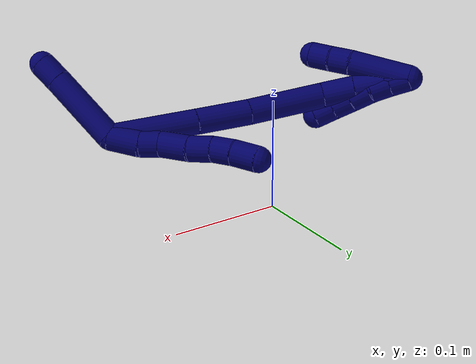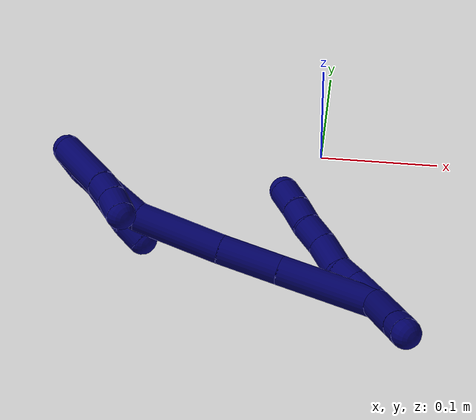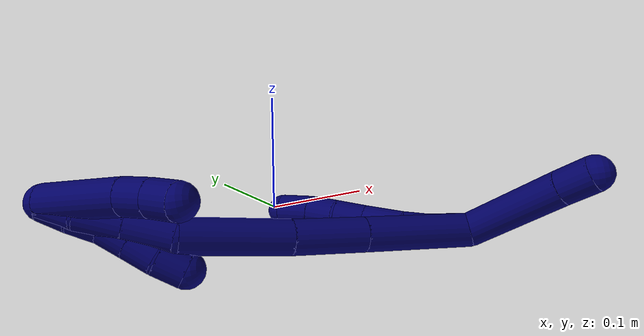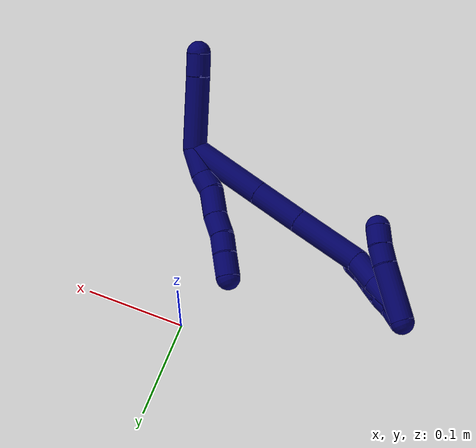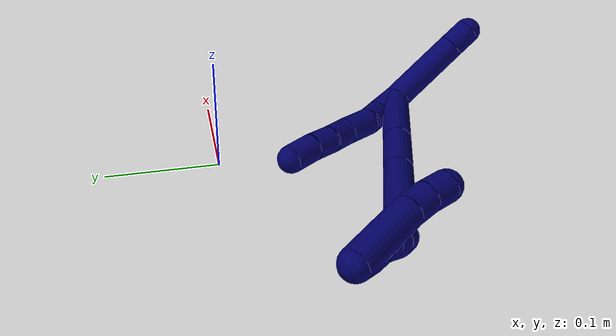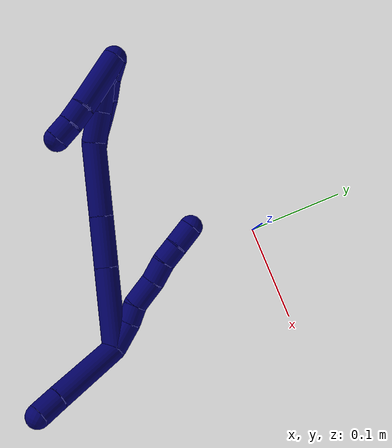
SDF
<sdf version="1.7">
 <world name="default">
  <model name="7">
   <static>0</static>
   <link name="7">
    <collision name="collision-cylinder-e_1_2_8">
     <pose>0.000572 0.001658 -0.015069 -3.03204 0.037737 -0.662909</pose>
     <geometry><cylinder><radius>0.0125</radius><length>0.030342</length></cylinder></geometry>
     <surface>
      <friction><ode><mu>1.16</mu><mu2>1.16</mu2><slip1>0</slip1><slip2>0</slip2></ode></friction>
      <contact><ode><kp>1e+06</kp><kd>1</kd><max_vel>0</max_vel><min_depth>0.001</min_depth></ode></contact>
     </surface>
    </collision>
    <visual name="visual-cylinder-e_1_2_8">
     <pose>0.000572 0.001658 -0.015069 -3.03204 0.037737 -0.662909</pose>
     <geometry><cylinder><radius>0.0125</radius><length>0.030342</length></cylinder></geometry>
     <material><ambient>0.003922 0 0.403922 1</ambient></material>
    </visual>
    <collision name="collision-cylinder-e_2_8_9">
     <pose>-0.00035 0.00568 -0.039782 -2.90109 -0.149435 1.10926</pose>
     <geometry><cylinder><radius>0.0125</radius><length>0.020082</length></cylinder></geometry>
     <surface>
      <friction><ode><mu>1.16</mu><mu2>1.16</mu2><slip1>0</slip1><slip2>0</slip2></ode></friction>
      <contact><ode><kp>1e+06</kp><kd>1</kd><max_vel>0</max_vel><min_depth>0.001</min_depth></ode></contact>
     </surface>
    </collision>
    <visual name="visual-cylinder-e_2_8_9">
     <pose>-0.00035 0.00568 -0.039782 -2.90109 -0.149435 1.10926</pose>
     <geometry><cylinder><radius>0.0125</radius><length>0.020082</length></cylinder></geometry>
     <material><ambient>0.003922 0 0.403922 1</ambient></material>
    </visual>
    <collision name="collision-cylinder-e_3_9_10">
     <pose>0.000418 0.012208 -0.063768 -2.85911 0.15042 -0.974632</pose>
     <geometry><cylinder><radius>0.0125</radius><length>0.03021</length></cylinder></geometry>
     <surface>
      <friction><ode><mu>1.16</mu><mu2>1.16</mu2><slip1>0</slip1><slip2>0</slip2></ode></friction>
      <contact><ode><kp>1e+06</kp><kd>1</kd><max_vel>0</max_vel><min_depth>0.001</min_depth></ode></contact>
     </surface>
    </collision>
    <visual name="visual-cylinder-e_3_9_10">
     <pose>0.000418 0.012208 -0.063768 -2.85911 0.15042 -0.974632</pose>
     <geometry><cylinder><radius>0.0125</radius><length>0.03021</length></cylinder></geometry>
     <material><ambient>0.003922 0 0.403922 1</ambient></material>
    </visual>
    <collision name="collision-cylinder-e_4_10_11">
     <pose>0.002609 0.020003 -0.089307 -2.8279 -0.006161 0.038952</pose>
     <geometry><cylinder><radius>0.0125</radius><length>0.023543</length></cylinder></geometry>
     <surface>
      <friction><ode><mu>1.16</mu><mu2>1.16</mu2><slip1>0</slip1><slip2>0</slip2></ode></friction>
      <contact><ode><kp>1e+06</kp><kd>1</kd><max_vel>0</max_vel><min_depth>0.001</min_depth></ode></contact>
     </surface>
    </collision>
    <visual name="visual-cylinder-e_4_10_11">
     <pose>0.002609 0.020003 -0.089307 -2.8279 -0.006161 0.038952</pose>
     <geometry><cylinder><radius>0.0125</radius><length>0.023543</length></cylinder></geometry>
     <material><ambient>0.003922 0 0.403922 1</ambient></material>
    </visual>
    <collision name="collision-cylinder-e_5_11_12">
     <pose>0.004317 0.026538 -0.110455 -2.85782 0.170114 -1.07626</pose>
     <geometry><cylinder><radius>0.0125</radius><length>0.021035</length></cylinder></geometry>
     <surface>
      <friction><ode><mu>1.16</mu><mu2>1.16</mu2><slip1>0</slip1><slip2>0</slip2></ode></friction>
      <contact><ode><kp>1e+06</kp><kd>1</kd><max_vel>0</max_vel><min_depth>0.001</min_depth></ode></contact>
     </surface>
    </collision>
    <visual name="visual-cylinder-e_5_11_12">
     <pose>0.004317 0.026538 -0.110455 -2.85782 0.170114 -1.07626</pose>
     <geometry><cylinder><radius>0.0125</radius><length>0.021035</length></cylinder></geometry>
     <material><ambient>0.003922 0 0.403922 1</ambient></material>
    </visual>
    <collision name="collision-cylinder-e_6_12_6">
     <pose>0.008342 0.031566 -0.132408 -2.96625 0.182078 -1.60867</pose>
     <geometry><cylinder><radius>0.0125</radius><length>0.024788</length></cylinder></geometry>
     <surface>
      <friction><ode><mu>1.16</mu><mu2>1.16</mu2><slip1>0</slip1><slip2>0</slip2></ode></friction>
      <contact><ode><kp>1e+06</kp><kd>1</kd><max_vel>0</max_vel><min_depth>0.001</min_depth></ode></contact>
     </surface>
    </collision>
    <visual name="visual-cylinder-e_6_12_6">
     <pose>0.008342 0.031566 -0.132408 -2.96625 0.182078 -1.60867</pose>
     <geometry><cylinder><radius>0.0125</radius><length>0.024788</length></cylinder></geometry>
     <material><ambient>0.003922 0 0.403922 1</ambient></material>
    </visual>
    <collision name="collision-cylinder-e_1_2_13">
     <pose>-0.016112 0.011233 0.032691 -0.330964 -0.436176 0.073989</pose>
     <geometry><cylinder><radius>0.0125</radius><length>0.076275</length></cylinder></geometry>
     <surface>
      <friction><ode><mu>1.16</mu><mu2>1.16</mu2><slip1>0</slip1><slip2>0</slip2></ode></friction>
      <contact><ode><kp>1e+06</kp><kd>1</kd><max_vel>0</max_vel><min_depth>0.001</min_depth></ode></contact>
     </surface>
    </collision>
    <visual name="visual-cylinder-e_1_2_13">
     <pose>-0.016112 0.011233 0.032691 -0.330964 -0.436176 0.073989</pose>
     <geometry><cylinder><radius>0.0125</radius><length>0.076275</length></cylinder></geometry>
     <material><ambient>0.003922 0 0.403922 1</ambient></material>
    </visual>
    <collision name="collision-cylinder-e_2_13_5">
     <pose>-0.037077 0.025683 0.075717 -0.301843 -0.421463 0.065038</pose>
     <geometry><cylinder><radius>0.0125</radius><length>0.023725</length></cylinder></geometry>
     <surface>
      <friction><ode><mu>1.16</mu><mu2>1.16</mu2><slip1>0</slip1><slip2>0</slip2></ode></friction>
      <contact><ode><kp>1e+06</kp><kd>1</kd><max_vel>0</max_vel><min_depth>0.001</min_depth></ode></contact>
     </surface>
    </collision>
    <visual name="visual-cylinder-e_2_13_5">
     <pose>-0.037077 0.025683 0.075717 -0.301843 -0.421463 0.065038</pose>
     <geometry><cylinder><radius>0.0125</radius><length>0.023725</length></cylinder></geometry>
     <material><ambient>0.003922 0 0.403922 1</ambient></material>
    </visual>
    <collision name="collision-cylinder-e_1_2_14">
     <pose>-0.023316 0.004595 -0.035119 -3.01149 -0.582201 2.7134</pose>
     <geometry><cylinder><radius>0.0125</radius><length>0.084807</length></cylinder></geometry>
     <surface>
      <friction><ode><mu>1.16</mu><mu2>1.16</mu2><slip1>0</slip1><slip2>0</slip2></ode></friction>
      <contact><ode><kp>1e+06</kp><kd>1</kd><max_vel>0</max_vel><min_depth>0.001</min_depth></ode></contact>
     </surface>
    </collision>
    <visual name="visual-cylinder-e_1_2_14">
     <pose>-0.023316 0.004595 -0.035119 -3.01149 -0.582201 2.7134</pose>
     <geometry><cylinder><radius>0.0125</radius><length>0.084807</length></cylinder></geometry>
     <material><ambient>0.003922 0 0.403922 1</ambient></material>
    </visual>
    <collision name="collision-cylinder-e_2_14_15">
     <pose>-0.061142 0.012163 -0.092048 -3.00613 -0.582781 2.69674</pose>
     <geometry><cylinder><radius>0.0125</radius><length>0.052729</length></cylinder></geometry>
     <surface>
      <friction><ode><mu>1.16</mu><mu2>1.16</mu2><slip1>0</slip1><slip2>0</slip2></ode></friction>
      <contact><ode><kp>1e+06</kp><kd>1</kd><max_vel>0</max_vel><min_depth>0.001</min_depth></ode></contact>
     </surface>
    </collision>
    <visual name="visual-cylinder-e_2_14_15">
     <pose>-0.061142 0.012163 -0.092048 -3.00613 -0.582781 2.69674</pose>
     <geometry><cylinder><radius>0.0125</radius><length>0.052729</length></cylinder></geometry>
     <material><ambient>0.003922 0 0.403922 1</ambient></material>
    </visual>
    <collision name="collision-cylinder-e_3_15_16">
     <pose>-0.096572 0.021153 -0.14479 -2.94945 -0.586088 2.52331</pose>
     <geometry><cylinder><radius>0.0125</radius><length>0.075646</length></cylinder></geometry>
     <surface>
      <friction><ode><mu>1.16</mu><mu2>1.16</mu2><slip1>0</slip1><slip2>0</slip2></ode></friction>
      <contact><ode><kp>1e+06</kp><kd>1</kd><max_vel>0</max_vel><min_depth>0.001</min_depth></ode></contact>
     </surface>
    </collision>
    <visual name="visual-cylinder-e_3_15_16">
     <pose>-0.096572 0.021153 -0.14479 -2.94945 -0.586088 2.52331</pose>
     <geometry><cylinder><radius>0.0125</radius><length>0.075646</length></cylinder></geometry>
     <material><ambient>0.003922 0 0.403922 1</ambient></material>
    </visual>
    <collision name="collision-cylinder-e_4_16_17">
     <pose>-0.122351 0.033065 -0.190035 -2.75093 -0.304166 1.31818</pose>
     <geometry><cylinder><radius>0.0125</radius><length>0.03245</length></cylinder></geometry>
     <surface>
      <friction><ode><mu>1.16</mu><mu2>1.16</mu2><slip1>0</slip1><slip2>0</slip2></ode></friction>
      <contact><ode><kp>1e+06</kp><kd>1</kd><max_vel>0</max_vel><min_depth>0.001</min_depth></ode></contact>
     </surface>
    </collision>
    <visual name="visual-cylinder-e_4_16_17">
     <pose>-0.122351 0.033065 -0.190035 -2.75093 -0.304166 1.31818</pose>
     <geometry><cylinder><radius>0.0125</radius><length>0.03245</length></cylinder></geometry>
     <material><ambient>0.003922 0 0.403922 1</ambient></material>
    </visual>
    <collision name="collision-cylinder-e_5_17_18">
     <pose>-0.131722 0.044612 -0.217765 -2.74286 -0.300487 1.28603</pose>
     <geometry><cylinder><radius>0.0125</radius><length>0.030483</length></cylinder></geometry>
     <surface>
      <friction><ode><mu>1.16</mu><mu2>1.16</mu2><slip1>0</slip1><slip2>0</slip2></ode></friction>
      <contact><ode><kp>1e+06</kp><kd>1</kd><max_vel>0</max_vel><min_depth>0.001</min_depth></ode></contact>
     </surface>
    </collision>
    <visual name="visual-cylinder-e_5_17_18">
     <pose>-0.131722 0.044612 -0.217765 -2.74286 -0.300487 1.28603</pose>
     <geometry><cylinder><radius>0.0125</radius><length>0.030483</length></cylinder></geometry>
     <material><ambient>0.003922 0 0.403922 1</ambient></material>
    </visual>
    <collision name="collision-cylinder-e_6_18_1">
     <pose>-0.13747 0.055183 -0.241994 -2.71469 -0.103769 0.470303</pose>
     <geometry><cylinder><radius>0.0125</radius><length>0.023885</length></cylinder></geometry>
     <surface>
      <friction><ode><mu>1.16</mu><mu2>1.16</mu2><slip1>0</slip1><slip2>0</slip2></ode></friction>
      <contact><ode><kp>1e+06</kp><kd>1</kd><max_vel>0</max_vel><min_depth>0.001</min_depth></ode></contact>
     </surface>
    </collision>
    <visual name="visual-cylinder-e_6_18_1">
     <pose>-0.13747 0.055183 -0.241994 -2.71469 -0.103769 0.470303</pose>
     <geometry><cylinder><radius>0.0125</radius><length>0.023885</length></cylinder></geometry>
     <material><ambient>0.003922 0 0.403922 1</ambient></material>
    </visual>
    <collision name="collision-cylinder-e_1_1_19">
     <pose>-0.13681 0.055017 -0.244406 0.5443 0.190923 0.053431</pose>
     <geometry><cylinder><radius>0.0125</radius><length>0.02</length></cylinder></geometry>
     <surface>
      <friction><ode><mu>1.16</mu><mu2>1.16</mu2><slip1>0</slip1><slip2>0</slip2></ode></friction>
      <contact><ode><kp>1e+06</kp><kd>1</kd><max_vel>0</max_vel><min_depth>0.001</min_depth></ode></contact>
     </surface>
    </collision>
    <visual name="visual-cylinder-e_1_1_19">
     <pose>-0.13681 0.055017 -0.244406 0.5443 0.190923 0.053431</pose>
     <geometry><cylinder><radius>0.0125</radius><length>0.02</length></cylinder></geometry>
     <material><ambient>0.003922 0 0.403922 1</ambient></material>
    </visual>
    <collision name="collision-cylinder-e_2_19_20">
     <pose>-0.131579 0.045315 -0.227787 0.511849 0.339753 0.089706</pose>
     <geometry><cylinder><radius>0.0125</radius><length>0.02</length></cylinder></geometry>
     <surface>
      <friction><ode><mu>1.16</mu><mu2>1.16</mu2><slip1>0</slip1><slip2>0</slip2></ode></friction>
      <contact><ode><kp>1e+06</kp><kd>1</kd><max_vel>0</max_vel><min_depth>0.001</min_depth></ode></contact>
     </surface>
    </collision>
    <visual name="visual-cylinder-e_2_19_20">
     <pose>-0.131579 0.045315 -0.227787 0.511849 0.339753 0.089706</pose>
     <geometry><cylinder><radius>0.0125</radius><length>0.02</length></cylinder></geometry>
     <material><ambient>0.003922 0 0.403922 1</ambient></material>
    </visual>
    <collision name="collision-cylinder-e_3_20_21">
     <pose>-0.125981 0.03452 -0.212036 0.68698 0.228543 0.082054</pose>
     <geometry><cylinder><radius>0.0125</radius><length>0.02</length></cylinder></geometry>
     <surface>
      <friction><ode><mu>1.16</mu><mu2>1.16</mu2><slip1>0</slip1><slip2>0</slip2></ode></friction>
      <contact><ode><kp>1e+06</kp><kd>1</kd><max_vel>0</max_vel><min_depth>0.001</min_depth></ode></contact>
     </surface>
    </collision>
    <visual name="visual-cylinder-e_3_20_21">
     <pose>-0.125981 0.03452 -0.212036 0.68698 0.228543 0.082054</pose>
     <geometry><cylinder><radius>0.0125</radius><length>0.02</length></cylinder></geometry>
     <material><ambient>0.003922 0 0.403922 1</ambient></material>
    </visual>
    <collision name="collision-cylinder-e_4_21_22">
     <pose>-0.121695 0.022151 -0.196917 0.684391 0.203426 0.072681</pose>
     <geometry><cylinder><radius>0.0125</radius><length>0.02</length></cylinder></geometry>
     <surface>
      <friction><ode><mu>1.16</mu><mu2>1.16</mu2><slip1>0</slip1><slip2>0</slip2></ode></friction>
      <contact><ode><kp>1e+06</kp><kd>1</kd><max_vel>0</max_vel><min_depth>0.001</min_depth></ode></contact>
     </surface>
    </collision>
    <visual name="visual-cylinder-e_4_21_22">
     <pose>-0.121695 0.022151 -0.196917 0.684391 0.203426 0.072681</pose>
     <geometry><cylinder><radius>0.0125</radius><length>0.02</length></cylinder></geometry>
     <material><ambient>0.003922 0 0.403922 1</ambient></material>
    </visual>
    <collision name="collision-cylinder-e_5_22_4">
     <pose>-0.116247 0.010444 -0.181724 0.627474 0.349905 0.114575</pose>
     <geometry><cylinder><radius>0.0125</radius><length>0.02</length></cylinder></geometry>
     <surface>
      <friction><ode><mu>1.16</mu><mu2>1.16</mu2><slip1>0</slip1><slip2>0</slip2></ode></friction>
      <contact><ode><kp>1e+06</kp><kd>1</kd><max_vel>0</max_vel><min_depth>0.001</min_depth></ode></contact>
     </surface>
    </collision>
    <visual name="visual-cylinder-e_5_22_4">
     <pose>-0.116247 0.010444 -0.181724 0.627474 0.349905 0.114575</pose>
     <geometry><cylinder><radius>0.0125</radius><length>0.02</length></cylinder></geometry>
     <material><ambient>0.003922 0 0.403922 1</ambient></material>
    </visual>
    <collision name="collision-cylinder-e_1_1_23">
     <pose>-0.140912 0.057877 -0.223161 0.074867 -0.074038 -0.002774</pose>
     <geometry><cylinder><radius>0.0125</radius><length>0.05962</length></cylinder></geometry>
     <surface>
      <friction><ode><mu>1.16</mu><mu2>1.16</mu2><slip1>0</slip1><slip2>0</slip2></ode></friction>
      <contact><ode><kp>1e+06</kp><kd>1</kd><max_vel>0</max_vel><min_depth>0.001</min_depth></ode></contact>
     </surface>
    </collision>
    <visual name="visual-cylinder-e_1_1_23">
     <pose>-0.140912 0.057877 -0.223161 0.074867 -0.074038 -0.002774</pose>
     <geometry><cylinder><radius>0.0125</radius><length>0.05962</length></cylinder></geometry>
     <material><ambient>0.003922 0 0.403922 1</ambient></material>
    </visual>
    <collision name="collision-cylinder-e_2_23_24">
     <pose>-0.144265 0.053888 -0.183689 0.177819 -0.114424 -0.010211</pose>
     <geometry><cylinder><radius>0.0125</radius><length>0.020099</length></cylinder></geometry>
     <surface>
      <friction><ode><mu>1.16</mu><mu2>1.16</mu2><slip1>0</slip1><slip2>0</slip2></ode></friction>
      <contact><ode><kp>1e+06</kp><kd>1</kd><max_vel>0</max_vel><min_depth>0.001</min_depth></ode></contact>
     </surface>
    </collision>
    <visual name="visual-cylinder-e_2_23_24">
     <pose>-0.144265 0.053888 -0.183689 0.177819 -0.114424 -0.010211</pose>
     <geometry><cylinder><radius>0.0125</radius><length>0.020099</length></cylinder></geometry>
     <material><ambient>0.003922 0 0.403922 1</ambient></material>
    </visual>
    <collision name="collision-cylinder-e_3_24_3">
     <pose>-0.147579 0.049827 -0.164226 0.233792 -0.215354 -0.025386</pose>
     <geometry><cylinder><radius>0.0125</radius><length>0.02028</length></cylinder></geometry>
     <surface>
      <friction><ode><mu>1.16</mu><mu2>1.16</mu2><slip1>0</slip1><slip2>0</slip2></ode></friction>
      <contact><ode><kp>1e+06</kp><kd>1</kd><max_vel>0</max_vel><min_depth>0.001</min_depth></ode></contact>
     </surface>
    </collision>
    <visual name="visual-cylinder-e_3_24_3">
     <pose>-0.147579 0.049827 -0.164226 0.233792 -0.215354 -0.025386</pose>
     <geometry><cylinder><radius>0.0125</radius><length>0.02028</length></cylinder></geometry>
     <material><ambient>0.003922 0 0.403922 1</ambient></material>
    </visual>
    <collision name="collision-sphere-3">
     <pose>-0.149746 0.047532 -0.154589 0 -0 0</pose>
     <geometry><sphere><radius>0.0125</radius></sphere></geometry>
     <surface>
      <friction><ode><mu>1.16</mu><mu2>1.16</mu2><slip1>0</slip1><slip2>0</slip2></ode></friction>
      <contact><ode><kp>1e+06</kp><kd>1</kd><max_vel>0</max_vel><min_depth>0.001</min_depth></ode></contact>
     </surface>
    </collision>
    <visual name="visual-sphere-3">
     <pose>-0.149746 0.047532 -0.154589 0 -0 0</pose>
     <geometry><sphere><radius>0.0125</radius></sphere></geometry>
     <material><ambient>0.003922 0 0.403922 1</ambient></material>
    </visual>
    <collision name="collision-sphere-24">
     <pose>-0.145412 0.052122 -0.173862 0 -0 0</pose>
     <geometry><sphere><radius>0.0125</radius></sphere></geometry>
     <surface>
      <friction><ode><mu>1.16</mu><mu2>1.16</mu2><slip1>0</slip1><slip2>0</slip2></ode></friction>
      <contact><ode><kp>1e+06</kp><kd>1</kd><max_vel>0</max_vel><min_depth>0.001</min_depth></ode></contact>
     </surface>
    </collision>
    <visual name="visual-sphere-24">
     <pose>-0.145412 0.052122 -0.173862 0 -0 0</pose>
     <geometry><sphere><radius>0.0125</radius></sphere></geometry>
     <material><ambient>0.003922 0 0.403922 1</ambient></material>
    </visual>
    <collision name="collision-sphere-23">
     <pose>-0.143117 0.055654 -0.193515 0 -0 0</pose>
     <geometry><sphere><radius>0.0125</radius></sphere></geometry>
     <surface>
      <friction><ode><mu>1.16</mu><mu2>1.16</mu2><slip1>0</slip1><slip2>0</slip2></ode></friction>
      <contact><ode><kp>1e+06</kp><kd>1</kd><max_vel>0</max_vel><min_depth>0.001</min_depth></ode></contact>
     </surface>
    </collision>
    <visual name="visual-sphere-23">
     <pose>-0.143117 0.055654 -0.193515 0 -0 0</pose>
     <geometry><sphere><radius>0.0125</radius></sphere></geometry>
     <material><ambient>0.003922 0 0.403922 1</ambient></material>
    </visual>
    <collision name="collision-sphere-4">
     <pose>-0.112819 0.004929 -0.17412 0 -0 0</pose>
     <geometry><sphere><radius>0.0125</radius></sphere></geometry>
     <surface>
      <friction><ode><mu>1.16</mu><mu2>1.16</mu2><slip1>0</slip1><slip2>0</slip2></ode></friction>
      <contact><ode><kp>1e+06</kp><kd>1</kd><max_vel>0</max_vel><min_depth>0.001</min_depth></ode></contact>
     </surface>
    </collision>
    <visual name="visual-sphere-4">
     <pose>-0.112819 0.004929 -0.17412 0 -0 0</pose>
     <geometry><sphere><radius>0.0125</radius></sphere></geometry>
     <material><ambient>0.003922 0 0.403922 1</ambient></material>
    </visual>
    <collision name="collision-sphere-22">
     <pose>-0.119675 0.015959 -0.189329 0 -0 0</pose>
     <geometry><sphere><radius>0.0125</radius></sphere></geometry>
     <surface>
      <friction><ode><mu>1.16</mu><mu2>1.16</mu2><slip1>0</slip1><slip2>0</slip2></ode></friction>
      <contact><ode><kp>1e+06</kp><kd>1</kd><max_vel>0</max_vel><min_depth>0.001</min_depth></ode></contact>
     </surface>
    </collision>
    <visual name="visual-sphere-22">
     <pose>-0.119675 0.015959 -0.189329 0 -0 0</pose>
     <geometry><sphere><radius>0.0125</radius></sphere></geometry>
     <material><ambient>0.003922 0 0.403922 1</ambient></material>
    </visual>
    <collision name="collision-sphere-21">
     <pose>-0.123716 0.028343 -0.204506 0 -0 0</pose>
     <geometry><sphere><radius>0.0125</radius></sphere></geometry>
     <surface>
      <friction><ode><mu>1.16</mu><mu2>1.16</mu2><slip1>0</slip1><slip2>0</slip2></ode></friction>
      <contact><ode><kp>1e+06</kp><kd>1</kd><max_vel>0</max_vel><min_depth>0.001</min_depth></ode></contact>
     </surface>
    </collision>
    <visual name="visual-sphere-21">
     <pose>-0.123716 0.028343 -0.204506 0 -0 0</pose>
     <geometry><sphere><radius>0.0125</radius></sphere></geometry>
     <material><ambient>0.003922 0 0.403922 1</ambient></material>
    </visual>
    <collision name="collision-sphere-20">
     <pose>-0.128247 0.040697 -0.219567 0 -0 0</pose>
     <geometry><sphere><radius>0.0125</radius></sphere></geometry>
     <surface>
      <friction><ode><mu>1.16</mu><mu2>1.16</mu2><slip1>0</slip1><slip2>0</slip2></ode></friction>
      <contact><ode><kp>1e+06</kp><kd>1</kd><max_vel>0</max_vel><min_depth>0.001</min_depth></ode></contact>
     </surface>
    </collision>
    <visual name="visual-sphere-20">
     <pose>-0.128247 0.040697 -0.219567 0 -0 0</pose>
     <geometry><sphere><radius>0.0125</radius></sphere></geometry>
     <material><ambient>0.003922 0 0.403922 1</ambient></material>
    </visual>
    <collision name="collision-sphere-12">
     <pose>0.006098 0.02944 -0.120406 0 -0 0</pose>
     <geometry><sphere><radius>0.0125</radius></sphere></geometry>
     <surface>
      <friction><ode><mu>1.16</mu><mu2>1.16</mu2><slip1>0</slip1><slip2>0</slip2></ode></friction>
      <contact><ode><kp>1e+06</kp><kd>1</kd><max_vel>0</max_vel><min_depth>0.001</min_depth></ode></contact>
     </surface>
    </collision>
    <visual name="visual-sphere-12">
     <pose>0.006098 0.02944 -0.120406 0 -0 0</pose>
     <geometry><sphere><radius>0.0125</radius></sphere></geometry>
     <material><ambient>0.003922 0 0.403922 1</ambient></material>
    </visual>
    <collision name="collision-sphere-11">
     <pose>0.002537 0.023636 -0.100504 0 -0 0</pose>
     <geometry><sphere><radius>0.0125</radius></sphere></geometry>
     <surface>
      <friction><ode><mu>1.16</mu><mu2>1.16</mu2><slip1>0</slip1><slip2>0</slip2></ode></friction>
      <contact><ode><kp>1e+06</kp><kd>1</kd><max_vel>0</max_vel><min_depth>0.001</min_depth></ode></contact>
     </surface>
    </collision>
    <visual name="visual-sphere-11">
     <pose>0.002537 0.023636 -0.100504 0 -0 0</pose>
     <geometry><sphere><radius>0.0125</radius></sphere></geometry>
     <material><ambient>0.003922 0 0.403922 1</ambient></material>
    </visual>
    <collision name="collision-sphere-10">
     <pose>0.002682 0.016371 -0.07811 0 -0 0</pose>
     <geometry><sphere><radius>0.0125</radius></sphere></geometry>
     <surface>
      <friction><ode><mu>1.16</mu><mu2>1.16</mu2><slip1>0</slip1><slip2>0</slip2></ode></friction>
      <contact><ode><kp>1e+06</kp><kd>1</kd><max_vel>0</max_vel><min_depth>0.001</min_depth></ode></contact>
     </surface>
    </collision>
    <visual name="visual-sphere-10">
     <pose>0.002682 0.016371 -0.07811 0 -0 0</pose>
     <geometry><sphere><radius>0.0125</radius></sphere></geometry>
     <material><ambient>0.003922 0 0.403922 1</ambient></material>
    </visual>
    <collision name="collision-sphere-9">
     <pose>-0.001845 0.008045 -0.049425 0 -0 0</pose>
     <geometry><sphere><radius>0.0125</radius></sphere></geometry>
     <surface>
      <friction><ode><mu>1.16</mu><mu2>1.16</mu2><slip1>0</slip1><slip2>0</slip2></ode></friction>
      <contact><ode><kp>1e+06</kp><kd>1</kd><max_vel>0</max_vel><min_depth>0.001</min_depth></ode></contact>
     </surface>
    </collision>
    <visual name="visual-sphere-9">
     <pose>-0.001845 0.008045 -0.049425 0 -0 0</pose>
     <geometry><sphere><radius>0.0125</radius></sphere></geometry>
     <material><ambient>0.003922 0 0.403922 1</ambient></material>
    </visual>
    <collision name="collision-sphere-2">
     <geometry><sphere><radius>0.0125</radius></sphere></geometry>
     <surface>
      <friction><ode><mu>1.16</mu><mu2>1.16</mu2><slip1>0</slip1><slip2>0</slip2></ode></friction>
      <contact><ode><kp>1e+06</kp><kd>1</kd><max_vel>0</max_vel><min_depth>0.001</min_depth></ode></contact>
     </surface>
    </collision>
    <visual name="visual-sphere-2">
     <geometry><sphere><radius>0.0125</radius></sphere></geometry>
     <material><ambient>0.003922 0 0.403922 1</ambient></material>
    </visual>
    <collision name="collision-sphere-19">
     <pose>-0.134912 0.049933 -0.236007 0 -0 0</pose>
     <geometry><sphere><radius>0.0125</radius></sphere></geometry>
     <surface>
      <friction><ode><mu>1.16</mu><mu2>1.16</mu2><slip1>0</slip1><slip2>0</slip2></ode></friction>
      <contact><ode><kp>1e+06</kp><kd>1</kd><max_vel>0</max_vel><min_depth>0.001</min_depth></ode></contact>
     </surface>
    </collision>
    <visual name="visual-sphere-19">
     <pose>-0.134912 0.049933 -0.236007 0 -0 0</pose>
     <geometry><sphere><radius>0.0125</radius></sphere></geometry>
     <material><ambient>0.003922 0 0.403922 1</ambient></material>
    </visual>
    <collision name="collision-sphere-8">
     <pose>0.001145 0.003315 -0.030138 0 -0 0</pose>
     <geometry><sphere><radius>0.0125</radius></sphere></geometry>
     <surface>
      <friction><ode><mu>1.16</mu><mu2>1.16</mu2><slip1>0</slip1><slip2>0</slip2></ode></friction>
      <contact><ode><kp>1e+06</kp><kd>1</kd><max_vel>0</max_vel><min_depth>0.001</min_depth></ode></contact>
     </surface>
    </collision>
    <visual name="visual-sphere-8">
     <pose>0.001145 0.003315 -0.030138 0 -0 0</pose>
     <geometry><sphere><radius>0.0125</radius></sphere></geometry>
     <material><ambient>0.003922 0 0.403922 1</ambient></material>
    </visual>
    <collision name="collision-sphere-6">
     <pose>0.010586 0.033693 -0.144411 0 -0 0</pose>
     <geometry><sphere><radius>0.0125</radius></sphere></geometry>
     <surface>
      <friction><ode><mu>1.16</mu><mu2>1.16</mu2><slip1>0</slip1><slip2>0</slip2></ode></friction>
      <contact><ode><kp>1e+06</kp><kd>1</kd><max_vel>0</max_vel><min_depth>0.001</min_depth></ode></contact>
     </surface>
    </collision>
    <visual name="visual-sphere-6">
     <pose>0.010586 0.033693 -0.144411 0 -0 0</pose>
     <geometry><sphere><radius>0.0125</radius></sphere></geometry>
     <material><ambient>0.003922 0 0.403922 1</ambient></material>
    </visual>
    <collision name="collision-sphere-13">
     <pose>-0.032224 0.022465 0.065382 0 -0 0</pose>
     <geometry><sphere><radius>0.0125</radius></sphere></geometry>
     <surface>
      <friction><ode><mu>1.16</mu><mu2>1.16</mu2><slip1>0</slip1><slip2>0</slip2></ode></friction>
      <contact><ode><kp>1e+06</kp><kd>1</kd><max_vel>0</max_vel><min_depth>0.001</min_depth></ode></contact>
     </surface>
    </collision>
    <visual name="visual-sphere-13">
     <pose>-0.032224 0.022465 0.065382 0 -0 0</pose>
     <geometry><sphere><radius>0.0125</radius></sphere></geometry>
     <material><ambient>0.003922 0 0.403922 1</ambient></material>
    </visual>
    <collision name="collision-sphere-5">
     <pose>-0.04193 0.028901 0.086052 0 -0 0</pose>
     <geometry><sphere><radius>0.0125</radius></sphere></geometry>
     <surface>
      <friction><ode><mu>1.16</mu><mu2>1.16</mu2><slip1>0</slip1><slip2>0</slip2></ode></friction>
      <contact><ode><kp>1e+06</kp><kd>1</kd><max_vel>0</max_vel><min_depth>0.001</min_depth></ode></contact>
     </surface>
    </collision>
    <visual name="visual-sphere-5">
     <pose>-0.04193 0.028901 0.086052 0 -0 0</pose>
     <geometry><sphere><radius>0.0125</radius></sphere></geometry>
     <material><ambient>0.003922 0 0.403922 1</ambient></material>
    </visual>
    <collision name="collision-sphere-14">
     <pose>-0.046633 0.00919 -0.070237 0 -0 0</pose>
     <geometry><sphere><radius>0.0125</radius></sphere></geometry>
     <surface>
      <friction><ode><mu>1.16</mu><mu2>1.16</mu2><slip1>0</slip1><slip2>0</slip2></ode></friction>
      <contact><ode><kp>1e+06</kp><kd>1</kd><max_vel>0</max_vel><min_depth>0.001</min_depth></ode></contact>
     </surface>
    </collision>
    <visual name="visual-sphere-14">
     <pose>-0.046633 0.00919 -0.070237 0 -0 0</pose>
     <geometry><sphere><radius>0.0125</radius></sphere></geometry>
     <material><ambient>0.003922 0 0.403922 1</ambient></material>
    </visual>
    <collision name="collision-sphere-15">
     <pose>-0.075652 0.015136 -0.113859 0 -0 0</pose>
     <geometry><sphere><radius>0.0125</radius></sphere></geometry>
     <surface>
      <friction><ode><mu>1.16</mu><mu2>1.16</mu2><slip1>0</slip1><slip2>0</slip2></ode></friction>
      <contact><ode><kp>1e+06</kp><kd>1</kd><max_vel>0</max_vel><min_depth>0.001</min_depth></ode></contact>
     </surface>
    </collision>
    <visual name="visual-sphere-15">
     <pose>-0.075652 0.015136 -0.113859 0 -0 0</pose>
     <geometry><sphere><radius>0.0125</radius></sphere></geometry>
     <material><ambient>0.003922 0 0.403922 1</ambient></material>
    </visual>
    <collision name="collision-sphere-16">
     <pose>-0.117492 0.02717 -0.175721 0 -0 0</pose>
     <geometry><sphere><radius>0.0125</radius></sphere></geometry>
     <surface>
      <friction><ode><mu>1.16</mu><mu2>1.16</mu2><slip1>0</slip1><slip2>0</slip2></ode></friction>
      <contact><ode><kp>1e+06</kp><kd>1</kd><max_vel>0</max_vel><min_depth>0.001</min_depth></ode></contact>
     </surface>
    </collision>
    <visual name="visual-sphere-16">
     <pose>-0.117492 0.02717 -0.175721 0 -0 0</pose>
     <geometry><sphere><radius>0.0125</radius></sphere></geometry>
     <material><ambient>0.003922 0 0.403922 1</ambient></material>
    </visual>
    <collision name="collision-sphere-17">
     <pose>-0.127211 0.03896 -0.204349 0 -0 0</pose>
     <geometry><sphere><radius>0.0125</radius></sphere></geometry>
     <surface>
      <friction><ode><mu>1.16</mu><mu2>1.16</mu2><slip1>0</slip1><slip2>0</slip2></ode></friction>
      <contact><ode><kp>1e+06</kp><kd>1</kd><max_vel>0</max_vel><min_depth>0.001</min_depth></ode></contact>
     </surface>
    </collision>
    <visual name="visual-sphere-17">
     <pose>-0.127211 0.03896 -0.204349 0 -0 0</pose>
     <geometry><sphere><radius>0.0125</radius></sphere></geometry>
     <material><ambient>0.003922 0 0.403922 1</ambient></material>
    </visual>
    <collision name="collision-sphere-18">
     <pose>-0.136233 0.050265 -0.231181 0 -0 0</pose>
     <geometry><sphere><radius>0.0125</radius></sphere></geometry>
     <surface>
      <friction><ode><mu>1.16</mu><mu2>1.16</mu2><slip1>0</slip1><slip2>0</slip2></ode></friction>
      <contact><ode><kp>1e+06</kp><kd>1</kd><max_vel>0</max_vel><min_depth>0.001</min_depth></ode></contact>
     </surface>
    </collision>
    <visual name="visual-sphere-18">
     <pose>-0.136233 0.050265 -0.231181 0 -0 0</pose>
     <geometry><sphere><radius>0.0125</radius></sphere></geometry>
     <material><ambient>0.003922 0 0.403922 1</ambient></material>
    </visual>
    <collision name="collision-sphere-1">
     <pose>-0.138707 0.060101 -0.252806 0 -0 0</pose>
     <geometry><sphere><radius>0.0125</radius></sphere></geometry>
     <surface>
      <friction><ode><mu>1.16</mu><mu2>1.16</mu2><slip1>0</slip1><slip2>0</slip2></ode></friction>
      <contact><ode><kp>1e+06</kp><kd>1</kd><max_vel>0</max_vel><min_depth>0.001</min_depth></ode></contact>
     </surface>
    </collision>
    <visual name="visual-sphere-1">
     <pose>-0.138707 0.060101 -0.252806 0 -0 0</pose>
     <geometry><sphere><radius>0.0125</radius></sphere></geometry>
     <material><ambient>0.003922 0 0.403922 1</ambient></material>
    </visual>
    <inertial>
     <pose>-0.069923 0.025448 -0.114073 0 -0 0</pose>
     <mass>0.75</mass>
     <inertia><ixx>3.6e-05</ixx><ixy>0</ixy><ixz>0</ixz><iyy>0.000207</iyy><iyz>0</iyz><izz>4.1e-05</izz></inertia>
    </inertial>
   </link>
   <pose>0.059178 -0.181316 0.015389 1.36352 0.233522 0.693383</pose>
  </model>
 </world>
</sdf>
